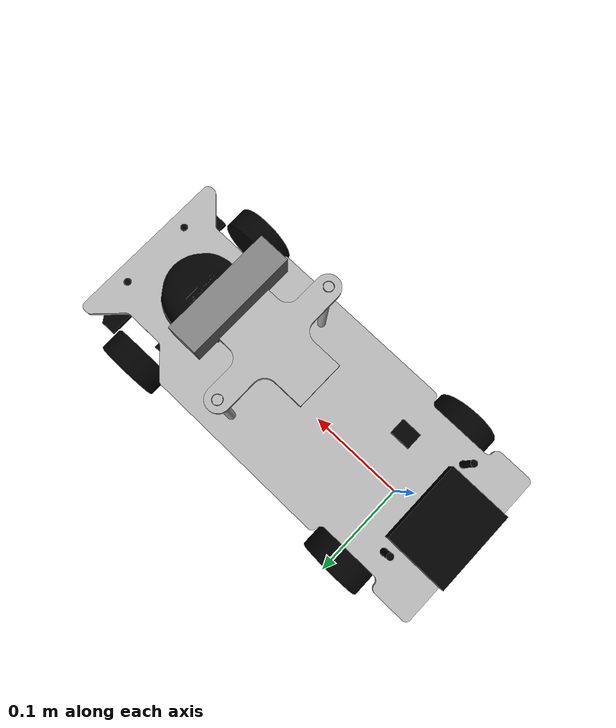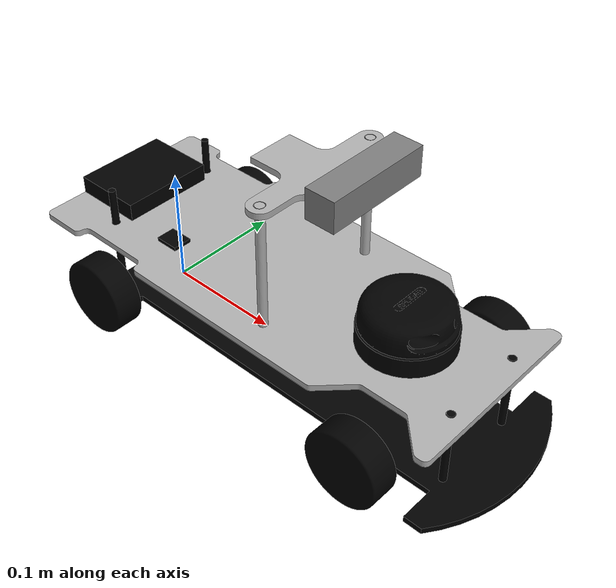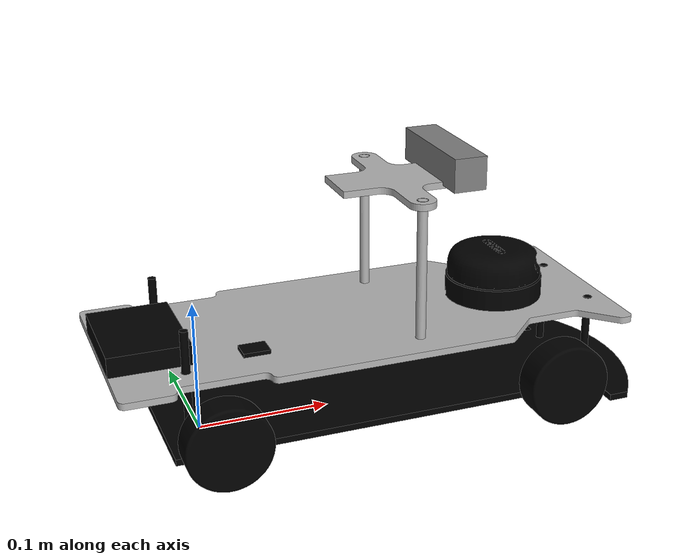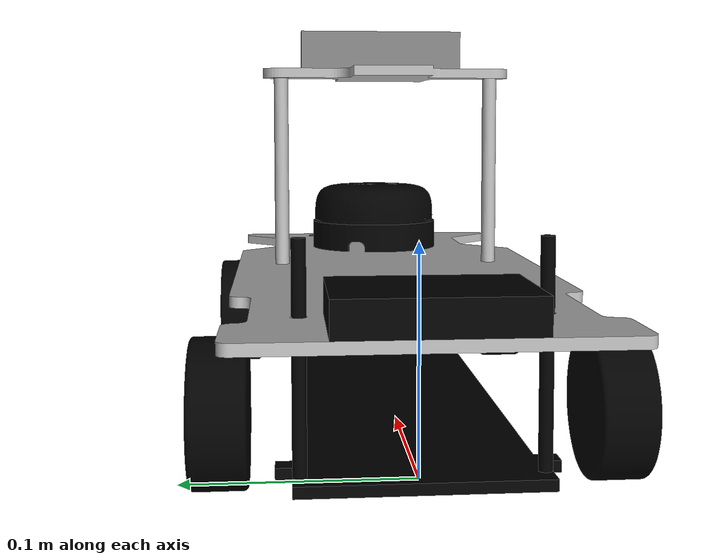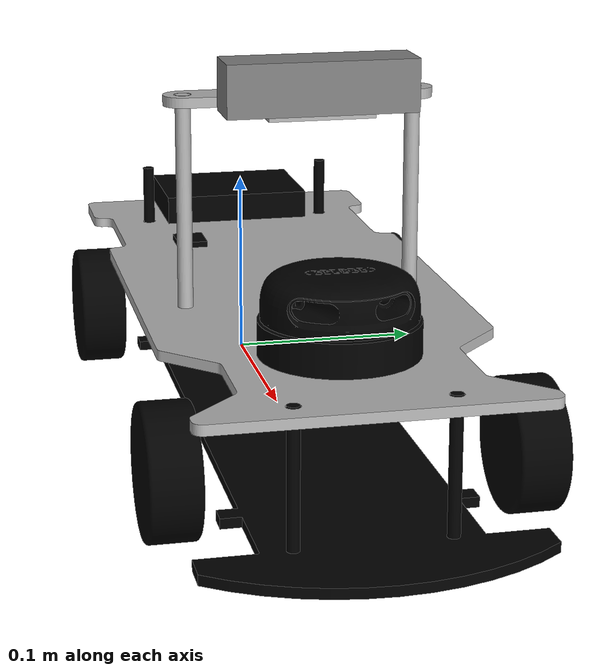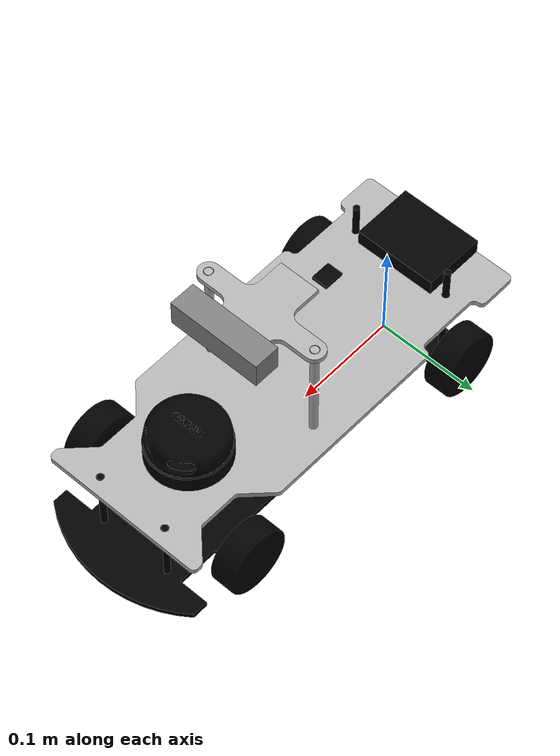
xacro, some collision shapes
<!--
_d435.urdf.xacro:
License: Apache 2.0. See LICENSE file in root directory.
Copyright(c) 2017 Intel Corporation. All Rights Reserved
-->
<?xml version="1.0"?>

<robot xmlns:xacro="http://www.ros.org/wiki/xacro" name="model_car">

    <!-- Included URDF Files -->
    <xacro:include filename="$(find car_robot_model)/urdf/include/materials.xacro"/>

    <xacro:include filename="$(find car_robot_model)/urdf/include/platform.xacro"/>

    <xacro:include filename="$(find car_robot_model)/urdf/include/sensors.xacro"/>

</robot>

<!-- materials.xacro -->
<robot>

    <material name="Black">
        <color rgba="0.0 0.0 0.0 1.0"/>
    </material>

    <material name="Blue">
        <color rgba="0.0 0.0 0.8 1.0"/>
    </material>

    <material name="Green">
        <color rgba="0.0 0.8 0.0 1.0"/>
    </material>

    <material name="Grey">
        <color rgba="0.7 0.7 0.7 1.0"/>
    </material>

    <material name="Grey2">
        <color rgba="0.9 0.9 0.9 1.0"/>
    </material>

    <material name="Red">
        <color rgba="0.8 0.0 0.0 1.0"/>
    </material>

    <material name="White">
        <color rgba="1.0 1.0 1.0 1.0"/>
    </material>

</robot>

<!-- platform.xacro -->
<robot xmlns:xacro="http://www.ros.org/wiki/xacro" name="model_car">

    <xacro:property name="PI" value="3.1415926535897931"/>
    <xacro:property name="angle_limit" value="${PI/3.0}"/>
    <xacro:property name="wheel_width" value="0.001"/>

    <link name="base_link">
    </link>

    <link name="body">
        <inertial>
            <mass value="6"/>
            <origin xyz="0.15971917 0.00000000 0.00197764"/>
            <inertia ixx="0.0067970" ixy="0.0" ixz="-0.0008808"
                     iyy="0.0784672" iyz="0.0"
                     izz="0.0838770"/>
        </inertial>
        <visual>
            <origin xyz="0 0 0" rpy="0 0 0"/>
            <geometry>
                <mesh filename="package://car_robot_model/meshes/chassis.stl"/>
            </geometry>
            <material name="Black"/>
        </visual>
        <collision>
            <origin xyz="0 0 0" rpy="0 0 0"/>
            <geometry>
                <mesh filename="package://car_robot_model/meshes/chassis.stl"/>
            </geometry>
        </collision>
    </link>

    <joint name="base_link_to_body" type="fixed">
        <origin xyz="0.0 0 0.005" rpy="0 0 0"/>
        <parent link="base_link"/>
        <child link="body"/>
    </joint>

    <joint name="base_link_rear_left_wheel_joint" type="revolute">
        <origin xyz="0.0 -0.0825 0.03" rpy="${PI/2.0} 0 0"/>
        <axis xyz="0 0 1"/>
        <anchor xyz="0 0 0"/>
        <parent link="base_link"/>
        <child link="rear_left_wheel_link"/>
        <limit lower="-1000000000000.0" upper="1000000000000.0" effort="3.0" velocity="124"/>
    </joint>

    <transmission name="tran_rear_left">
        <type>transmission_interface/SimpleTransmission</type>
        <joint name="base_link_rear_left_wheel_joint">
            <hardwareInterface>hardware_interface/EffortJointInterface</hardwareInterface>
        </joint>
        <actuator name="rear_left_motor">
            <hardwareInterface>hardware_interface/EffortJointInterface</hardwareInterface>
            <mechanicalReduction>1</mechanicalReduction>
        </actuator>
    </transmission>

    <link name="rear_left_wheel_link">
        <inertial>
            <mass value="1"/>
            <origin xyz="0 0 0" rpy="0 0 0"/>
            <inertia ixx="0.0002946" ixy="0.0" ixz="0.0"
                     iyy="0.0002946" iyz="0.0"
                     izz="0.000494"/>
        </inertial>
        <visual>
            <origin xyz="0 0 0" rpy="0 0 0"/>
            <geometry>
                <mesh filename="package://car_robot_model/meshes/wheel.stl"/>
            </geometry>
            <material name="Black"/>
        </visual>
        <collision>
            <origin xyz="0 0 0" rpy="0 0 0"/>
            <geometry>
                <cylinder radius="0.0315" length="${wheel_width}"/>
            </geometry>
        </collision>
    </link>

    <joint name="base_link_rear_right_wheel_joint" type="revolute">
        <origin xyz="0.0 0.0825 0.03" rpy="-${PI/2.0} 0 0"/>
        <axis xyz="0 0 1"/>
        <anchor xyz="0 0 0"/>
        <parent link="base_link"/>
        <child link="rear_right_wheel_link"/>
        <limit lower="-1000000000000.0" upper="1000000000000.0" effort="3.0" velocity="124"/>
    </joint>

    <transmission name="tran_rear_right">
        <type>transmission_interface/SimpleTransmission</type>
        <joint name="base_link_rear_right_wheel_joint">
            <hardwareInterface>hardware_interface/EffortJointInterface</hardwareInterface>
        </joint>
        <actuator name="rear_right_motor">
            <hardwareInterface>hardware_interface/EffortJointInterface</hardwareInterface>
            <mechanicalReduction>1</mechanicalReduction>
        </actuator>
    </transmission>

    <link name="rear_right_wheel_link">
        <inertial>
            <mass value="1"/>
            <origin xyz="0 0 0" rpy="0 0 0"/>
            <inertia ixx="0.0002946" ixy="0.0" ixz="0.0"
                     iyy="0.0002946" iyz="0.0"
                     izz="0.0004940"/>
        </inertial>
        <visual>
            <origin xyz="0 0 0" rpy="0 0 0"/>
            <geometry>
                <mesh filename="package://car_robot_model/meshes/wheel.stl"/>
            </geometry>
            <material name="Black"/>
        </visual>
        <collision>
            <origin xyz="0 0 0" rpy="0 0 0"/>
            <geometry>
                <cylinder radius="0.0315" length="${wheel_width}"/>
            </geometry>
        </collision>
    </link>

    <joint name="base_link_front_left_axel_joint" type="revolute">
        <origin xyz="0.260 -0.0825 0.03" rpy="${PI/2.0} 0 0"/>
        <axis xyz="0 1 0"/>
        <anchor xyz="0 0 0"/>
        <parent link="base_link"/>
        <child link="front_left_axel_link"/>
        <limit lower="-${angle_limit}" upper="${angle_limit}" effort="9.6" velocity="5.3"/>
        <dynamics damping="0.2"/>
    </joint>

    <transmission name="tran_front_left_axel">
        <type>transmission_interface/SimpleTransmission</type>
        <joint name="base_link_front_left_axel_joint">
            <hardwareInterface>hardware_interface/EffortJointInterface</hardwareInterface>
        </joint>
        <actuator name="front_left_axel_motor">
            <hardwareInterface>hardware_interface/EffortJointInterface</hardwareInterface>
            <mechanicalReduction>1</mechanicalReduction>
        </actuator>
    </transmission>

    <link name="front_left_axel_link">
        <inertial>
            <mass value="0.001"/>
            <origin xyz="0 0 0" rpy="0 0 0"/>
            <inertia ixx="0.00001" ixy="0.0" ixz="0.0"
                     iyy="0.00001" iyz="0.0"
                     izz="0.00001"/>
        </inertial>
    </link>

    <joint name="front_left_axel_front_left_wheel_joint" type="revolute">
        <origin xyz="0.0 0.0 0" rpy="0 0 0"/>
        <axis xyz="0 0 1"/>
        <anchor xyz="0 0 0"/>
        <parent link="front_left_axel_link"/>
        <child link="front_left_wheel_link"/>
        <limit lower="-1000000000000.0" upper="1000000000000.0" effort="3.0" velocity="124"/>
    </joint>

    <transmission name="tran_front_left_wheel">
        <type>transmission_interface/SimpleTransmission</type>
        <joint name="front_left_axel_front_left_wheel_joint">
            <hardwareInterface>hardware_interface/EffortJointInterface</hardwareInterface>
        </joint>
        <actuator name="front_left_wheel_motor">
            <hardwareInterface>hardware_interface/EffortJointInterface</hardwareInterface>
            <mechanicalReduction>1</mechanicalReduction>
        </actuator>
    </transmission>

    <link name="front_left_wheel_link">
        <inertial>
            <mass value="1"/>
            <origin xyz="0 0 0" rpy="0 0 0"/>
            <inertia ixx="0.0002946" ixy="0.0" ixz="0.0"
                     iyy="0.0002946" iyz="0.0"
                     izz="0.0004940"/>
        </inertial>
        <visual>
            <origin xyz="0 0 0" rpy="0 0 0"/>
            <geometry>
                <mesh filename="package://car_robot_model/meshes/wheel.stl"/>
            </geometry>
            <material name="Black"/>
        </visual>
        <collision>
            <origin xyz="0 0 0" rpy="0 0 0"/>
            <geometry>
                <cylinder radius="0.0315" length="${wheel_width}"/>
            </geometry>
        </collision>
    </link>

    <joint name="base_link_front_right_axel_joint" type="revolute">
        <origin xyz="0.260 0.0825 0.03" rpy="-${PI/2.0} 0 0"/>
        <axis xyz="0 1 0"/>
        <anchor xyz="0 0 0"/>
        <parent link="base_link"/>
        <child link="front_right_axel_link"/>
        <limit lower="-${angle_limit}" upper="${angle_limit}" effort="9.6" velocity="5.3"/>
        <dynamics damping="0.2"/>
    </joint>

    <transmission name="tran_front_right_axel">
        <type>transmission_interface/SimpleTransmission</type>
        <joint name="base_link_front_right_axel_joint">
            <hardwareInterface>hardware_interface/EffortJointInterface</hardwareInterface>
        </joint>
        <actuator name="front_right_axel_motor">
            <hardwareInterface>hardware_interface/EffortJointInterface</hardwareInterface>
            <mechanicalReduction>1</mechanicalReduction>
        </actuator>
    </transmission>

    <link name="front_right_axel_link">
        <inertial>
            <mass value="0.001"/>
            <origin xyz="0 0 0" rpy="0 0 0"/>
            <inertia ixx="0.00001" ixy="0.0" ixz="0.0"
                     iyy="0.00001" iyz="0.0"
                     izz="0.00001"/>
        </inertial>
    </link>

    <joint name="front_right_axel_front_right_wheel_joint" type="continuous">
        <origin xyz="0.0 0.0 0" rpy="0 0 0"/>
        <axis xyz="0 0 1"/>
        <anchor xyz="0 0 0"/>
        <parent link="front_right_axel_link"/>
        <child link="front_right_wheel_link"/>
        <limit lower="-1000000000000.0" upper="1000000000000.0" effort="3.0" velocity="124"/>
    </joint>

    <transmission name="tran_front_right_wheel">
        <type>transmission_interface/SimpleTransmission</type>
        <joint name="front_right_axel_front_right_wheel_joint">
            <hardwareInterface>hardware_interface/EffortJointInterface</hardwareInterface>
        </joint>
        <actuator name="front_right_wheel_motor">
            <hardwareInterface>hardware_interface/EffortJointInterface</hardwareInterface>
            <mechanicalReduction>1</mechanicalReduction>
        </actuator>
    </transmission>

    <link name="front_right_wheel_link">
        <inertial>
            <mass value="1"/>
            <origin xyz="0 0 0" rpy="0 0 0"/>
            <inertia ixx="0.0002946" ixy="0.0" ixz="0.0"
                     iyy="0.0002946" iyz="0.0"
                     izz="0.0004940"/>
        </inertial>
        <visual>
            <origin xyz="0 0 0" rpy="0 0 0"/>
            <geometry>
                <mesh filename="package://car_robot_model/meshes/wheel.stl"/>
            </geometry>
            <material name="Black"/>
        </visual>
        <collision>
            <origin xyz="0 0 0" rpy="0 0 0"/>
            <geometry>
                <cylinder radius="0.0315" length="${wheel_width}"/>
            </geometry>
        </collision>
    </link>

</robot>

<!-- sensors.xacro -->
<robot xmlns:xacro="http://www.ros.org/wiki/xacro" name="model_car">

    <!-- Included URDF Files -->
    <xacro:include filename="$(find car_robot_model)/urdf/include/rplidar_a2.xacro"/>
    <xacro:include filename="$(find realsense2_camera)/urdf/_d435.urdf.xacro"/>

    <xacro:property name="PI" value="3.1415926535897931"/>

    <link name="sensor_board">
        <inertial>
            <mass value="6"/>
            <origin xyz="0.12043628 0.00000000 0.00171950" rpy="0 0 0"/>
            <inertia ixx="0.0123739" ixy="0.0" ixz="0.0003463"
                     iyy="0.0711051" iyz="0.0"
                     izz="0.0820107"/>
        </inertial>
        <visual>
            <origin xyz="0.0 0.0 0.0" rpy="0 0 0"/>
            <geometry>
                <mesh filename="package://car_robot_model/meshes/sensor_board.stl"/>
            </geometry>
            <material name="Grey"/>
        </visual>
        <collision>
            <origin xyz="0.0 0.0 0.0" rpy="0 0 0"/>
            <geometry>
                <mesh filename="package://car_robot_model/meshes/sensor_board.stl"/>
            </geometry>
        </collision>
    </link>

    <joint name="joint_base_link_to_sensor_board" type="fixed">
        <parent link="base_link"/>
        <child link="sensor_board"/>
        <origin xyz="0 0 0.07" rpy="0 0 0"/>
    </joint>

    <link name="camera_board">
        <inertial>
            <mass value="0.6000000"/>
            <origin xyz="0.04901990 0.00000000 0.00000000" rpy="0 0 0"/>
            <inertia ixx="0.0003816" ixy="0.0" ixz="0.0"
                     iyy="0.0003420" iyz="0.0"
                     izz="0.0007211"/>
        </inertial>
        <visual>
            <origin xyz="0.0 0.0 0.0" rpy="0 0 0"/>
            <geometry>
                <mesh filename="package://car_robot_model/meshes/camera_board.stl"/>
            </geometry>
            <material name="Grey"/>
        </visual>
        <collision>
            <origin xyz="0.0 0.0 0.0" rpy="0 0 0"/>
            <geometry>
                <mesh filename="package://car_robot_model/meshes/camera_board.stl"/>
            </geometry>
        </collision>
    </link>

    <joint name="joint_sensor_board_to_camera_board" type="fixed">
        <parent link="sensor_board"/>
        <child link="camera_board"/>
        <origin xyz="0.109 0 0.105" rpy="0 0 0"/>
    </joint>

    <!--*               Sensors                         *-->

    <!-- IMU -->
    <link name="imu">
        <inertial>
            <mass value="0.0200000"/>
            <origin xyz="0.00000000 0.00000000 0.00150000" rpy="0 0 0"/>
            <inertia ixx="0.0000007" ixy="0.0" ixz="0.0"
                     iyy="0.0000004" iyz="0.0"
                     izz="0.0000011"/>
        </inertial>
        <visual>
            <origin xyz="0 0 0" rpy="0 0 0"/>
            <geometry>
                <mesh filename="package://car_robot_model/meshes/IMU.stl"/>
            </geometry>
            <material name="Black"/>
        </visual>
        <collision>
            <origin xyz="0 0 0" rpy="0 0 0"/>
            <geometry>
                <mesh filename="package://car_robot_model/meshes/IMU.stl"/>
            </geometry>
        </collision>
    </link>

    <joint name="joint_sensor_board_to_imu" type="fixed">
        <parent link="sensor_board"/>
        <child link="imu"/>
        <origin xyz="0.035 -0.035 0.0025" rpy="0 0 ${PI/2}"/>
    </joint>

    <!-- Odroid -->
    <link name="odroid">
        <inertial>
            <mass value="0.2000000"/>
            <origin xyz="0.00000000 0.00000000 0.00000000" rpy="0 0 0"/>
            <inertia ixx="0.00000000" ixy="0.0" ixz="0.0"
                     iyy="0.00000000" iyz="0.0"
                     izz="0.00000000"/>
        </inertial>
        <visual>
            <origin xyz="0 0 0.01" rpy="0 0 0"/>
            <geometry>
                <box size="0.06 0.08 0.015"/>
            </geometry>
            <material name="Black"/>
        </visual>
    </link>

    <joint name="joint_sensor_board_to_odroid" type="fixed">
        <parent link="sensor_board"/>
        <child link="odroid"/>
        <origin xyz="-0.04 0 0" rpy="0 0 0"/>
    </joint>

    <xacro:sensor_rplidar_a2 parent="sensor_board" prefix="lidar">
        <origin xyz="0.24 0 0" rpy="0 0 0"/>
    </xacro:sensor_rplidar_a2>

    <!-- front camera -->
    <xacro:property name="front_camera_name" value="camera"/>

    <sensor_d435 parent="camera_board">
        <origin xyz="0.087 0 0" rpy="0 0 0"/>
    </sensor_d435>

</robot>

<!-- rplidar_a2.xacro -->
<robot xmlns:xacro="http://www.ros.org/wiki/xacro">

    <xacro:macro name="sensor_rplidar_a2"
                 params="prefix parent prefix_topic:='front_laser' *origin min_angle:=-3.14159 max_angle:=3.14159">

        <joint name="${prefix}_base_joint" type="fixed">
            <xacro:insert_block name="origin"/>
            <parent link="${parent}"/>
            <child link="${prefix}_base_link"/>
        </joint>

        <link name="${prefix}_base_link">
            <collision>
                <origin xyz="0 0 0" rpy="0 0 0"/>
                <geometry>
                    <mesh filename="package://car_robot_model/meshes/rplidar_a2.dae"/>
                </geometry>
            </collision>

            <visual>
                <origin xyz="0 0 0" rpy="0 0 0"/>
                <geometry>
                    <mesh filename="package://car_robot_model/meshes/rplidar_a2.dae"/>
                </geometry>
                <material name="Black"/>
            </visual>

            <inertial>
                <mass value="1e-5"/>
                <origin xyz="0 0 0" rpy="0 0 0"/>
                <inertia ixx="1e-6" ixy="0" ixz="0" iyy="1e-6" iyz="0" izz="1e-6"/>
            </inertial>
        </link>

        <joint name="${prefix}_laser_joint" type="fixed">
            <origin xyz="0 0 0.03086" rpy="0 0 3.1415"/>
            <parent link="${prefix}_base_link"/>
            <child link="laser"/>
        </joint>

        <link name="laser">
        </link>
    </xacro:macro>
</robot>

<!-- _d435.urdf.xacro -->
<robot name="sensor_d435" xmlns:xacro="http://ros.org/wiki/xacro">
  <xacro:macro name="sensor_d435" params="parent *origin">
    <xacro:property name="M_PI" value="3.1415926535897931" />

    <!-- The following values are approximate, and the camera node
     publishing TF values with actual calibrated camera extrinsic values -->
    <xacro:property name="d435_cam_depth_to_left_ir_offset" value="0.0"/>
    <xacro:property name="d435_cam_depth_to_right_ir_offset" value="-0.050"/>
    <xacro:property name="d435_cam_depth_to_color_offset" value="0.015"/>

    <!-- The following values model the aluminum peripherial case for the
  	D435 camera, with the camera joint represented by the actual
  	peripherial camera tripod mount -->
    <xacro:property name="d435_cam_width" value="0.090"/>
    <xacro:property name="d435_cam_height" value="0.025"/>
    <xacro:property name="d435_cam_depth" value="0.02505"/>
    <xacro:property name="d435_cam_mount_from_center_offset" value="0.0149"/>

    <!-- The following offset is relative the the physical D435 camera peripherial
  	camera tripod mount -->
    <xacro:property name="d435_cam_depth_px" value="${d435_cam_mount_from_center_offset}"/>
    <xacro:property name="d435_cam_depth_py" value="0.0175"/>
    <xacro:property name="d435_cam_depth_pz" value="${d435_cam_height/2}"/>

    <material name="aluminum">
	  <color rgba="0.5 0.5 0.5 1"/>
    </material>

    <!-- camera body, with origin at bottom screw mount -->
    <joint name="camera_joint" type="fixed">
      <xacro:insert_block name="origin" />
      <parent link="${parent}"/>
      <child link="camera_bottom_screw_frame" />
    </joint>
    <link name="camera_bottom_screw_frame"/>

    <joint name="camera_link_joint" type="fixed">
      <origin xyz="0 ${d435_cam_depth_py} ${d435_cam_depth_pz}" rpy="0 0 0"/>
      <parent link="camera_bottom_screw_frame"/>
      <child link="camera_link" />
    </joint>

    <link name="camera_link">
      <visual>
      <origin xyz="${d435_cam_mount_from_center_offset} ${-d435_cam_depth_py} 0" rpy="${M_PI/2} 0 ${M_PI/2}"/>
        <geometry>
	  <mesh filename="package://realsense2_camera/meshes/d435.dae" />

        </geometry>
        <material name="aluminum"/>
      </visual>
      <collision>
        <origin xyz="0 ${-d435_cam_depth_py} 0" rpy="0 0 0"/>
        <geometry>
        <box size="${d435_cam_depth} ${d435_cam_width} ${d435_cam_height}"/>
        </geometry>
      </collision>
      <inertial>
        <!-- The following are not reliable values, and should not be used for modeling -->
        <mass value="0.564" />
        <origin xyz="0 0 0" />
        <inertia ixx="0.003881243" ixy="0.0" ixz="0.0" iyy="0.000498940" iyz="0.0" izz="0.003879257" />
      </inertial>
    </link>

    <!-- camera depth joints and links -->
    <joint name="camera_depth_joint" type="fixed">
      <origin xyz="0 0 0" rpy="0 0 0"/>
      <parent link="camera_link"/>
      <child link="camera_depth_frame" />
    </joint>
    <link name="camera_depth_frame"/>

    <joint name="camera_depth_optical_joint" type="fixed">
      <origin xyz="0 0 0" rpy="${-M_PI/2} 0 ${-M_PI/2}" />
      <parent link="camera_depth_frame" />
      <child link="camera_depth_optical_frame" />
    </joint>
    <link name="camera_depth_optical_frame"/>

    <!-- camera left IR joints and links -->
    <joint name="camera_left_ir_joint" type="fixed">
      <origin xyz="0 ${d435_cam_depth_to_left_ir_offset} 0" rpy="0 0 0" />
      <parent link="camera_depth_frame" />
      <child link="camera_left_ir_frame" />
    </joint>
    <link name="camera_left_ir_frame"/>

    <joint name="camera_left_ir_optical_joint" type="fixed">
      <origin xyz="0 0 0" rpy="${-M_PI/2} 0 ${-M_PI/2}" />
      <parent link="camera_left_ir_frame" />
      <child link="camera_left_ir_optical_frame" />
    </joint>
    <link name="camera_left_ir_optical_frame"/>

    <!-- camera right IR joints and links -->
    <joint name="camera_right_ir_joint" type="fixed">
      <origin xyz="0 ${d435_cam_depth_to_right_ir_offset} 0" rpy="0 0 0" />
      <parent link="camera_depth_frame" />
      <child link="camera_right_ir_frame" />
    </joint>
    <link name="camera_right_ir_frame"/>

    <joint name="camera_right_ir_optical_joint" type="fixed">
      <origin xyz="0 0 0" rpy="${-M_PI/2} 0 ${-M_PI/2}" />
      <parent link="camera_right_ir_frame" />
      <child link="camera_right_ir_optical_frame" />
    </joint>
    <link name="camera_right_ir_optical_frame"/>

    <!-- camera color joints and links -->
    <joint name="camera_color_joint" type="fixed">
      <origin xyz="0 ${d435_cam_depth_to_color_offset} 0" rpy="0 0 0" />
      <parent link="camera_depth_frame" />
      <child link="camera_color_frame" />
    </joint>
    <link name="camera_color_frame"/>

    <joint name="camera_color_optical_joint" type="fixed">
      <origin xyz="0 0 0" rpy="${-M_PI/2} 0 ${-M_PI/2}" />
      <parent link="camera_color_frame" />
      <child link="camera_color_optical_frame" />
    </joint>
    <link name="camera_color_optical_frame"/>
  </xacro:macro>
</robot>
